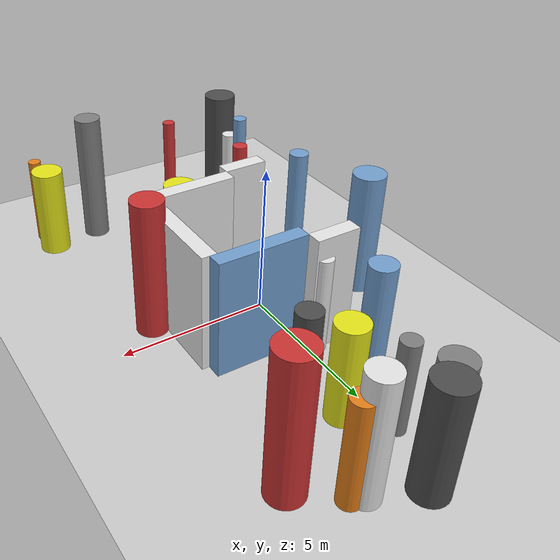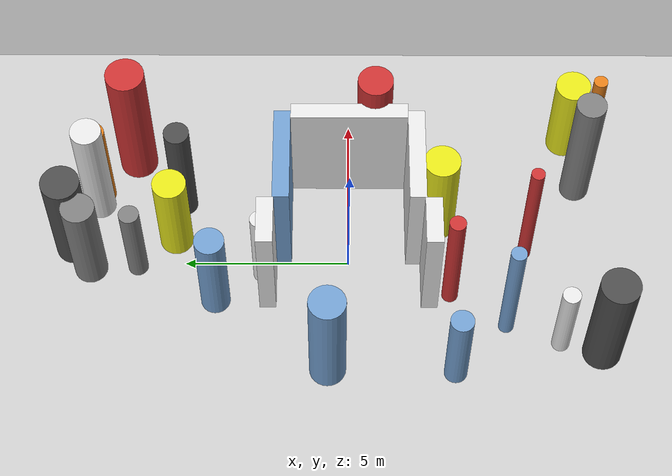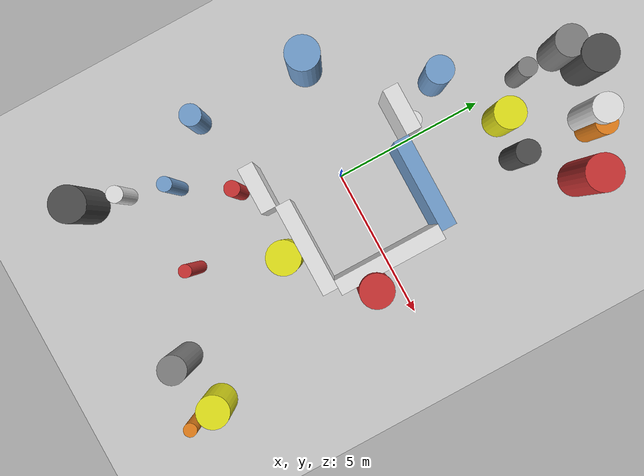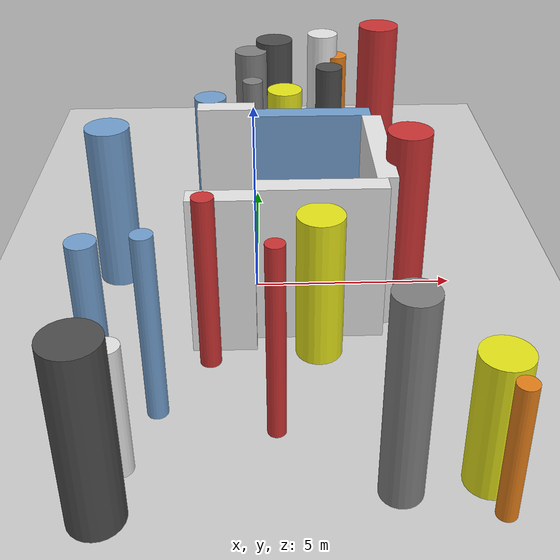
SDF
<?xml version='1.0'?>
<sdf version='1.6'>
  <world name='routeA_rl_v1__dense_recovery__rl_test__cul_de_sac_trap__000116'>
    <!-- Sun light -->
    <light name='sun' type='directional'>
      <cast_shadows>1</cast_shadows>
      <pose>0 0 10 0 0 0</pose>
      <diffuse>0.8 0.8 0.8 1</diffuse>
      <specular>0.2 0.2 0.2 1</specular>
      <attenuation>
        <range>1000</range>
        <constant>0.9</constant>
        <linear>0.01</linear>
        <quadratic>0.001</quadratic>
      </attenuation>
      <direction>-0.5 0.1 -0.9</direction>
    </light>

    <!-- Ground plane -->
    <model name='ground_plane'>
      <static>1</static>
      <link name='link'>
        <collision name='collision'>
          <geometry>
            <plane>
              <normal>0 0 1</normal>
              <size>100 100</size>
            </plane>
          </geometry>
          <surface>
            <contact>
              <collide_bitmask>65535</collide_bitmask>
              <ode/>
            </contact>
            <friction>
              <ode>
                <mu>100</mu>
                <mu2>50</mu2>
              </ode>
              <torsional><ode/></torsional>
            </friction>
            <bounce/>
          </surface>
          <max_contacts>10</max_contacts>
        </collision>
        <visual name='visual'>
          <cast_shadows>0</cast_shadows>
          <geometry>
            <plane>
              <normal>0 0 1</normal>
              <size>100 100</size>
            </plane>
          </geometry>
          <material>
            <script>
              <uri>file://media/materials/scripts/gazebo.material</uri>
              <n>Gazebo/Grey</n>
            </script>
          </material>
        </visual>
      </link>
    </model>

    <!-- Environment -->
    <magnetic_field>6e-06 2.3e-05 -4.2e-05</magnetic_field>
    <atmosphere type='adiabatic'/>
    <physics name='default_physics' default='0' type='ode'>
      <gravity>0 0 -9.8</gravity>
      <max_step_size>0.004</max_step_size>
      <real_time_factor>1</real_time_factor>
      <real_time_update_rate>250</real_time_update_rate>
    </physics>
    <scene>
      <ambient>0.4 0.4 0.4 1</ambient>
      <background>0.7 0.7 0.7 1</background>
      <shadows>1</shadows>
    </scene>
    <wind/>
    <spherical_coordinates>
      <surface_model>EARTH_WGS84</surface_model>
      <latitude_deg>0</latitude_deg>
      <longitude_deg>0</longitude_deg>
      <elevation>0</elevation>
      <heading_deg>0</heading_deg>
    </spherical_coordinates>

    <!-- ============ OBSTACLES (27) ============ -->
    <model name='trap_side_l'>
      <static>1</static>
      <link name='link'>
        <visual name='visual'>
          <geometry>
            <box>
              <size>3.0000 0.5000 4.0000</size>
            </box>
          </geometry>
          <material>
            <script>
              <n>Gazebo/White</n>
              <uri>file://media/materials/scripts/gazebo.material</uri>
            </script>
            <ambient>0.9 0.9 0.9 1</ambient>
          </material>
        </visual>
        <collision name='collision'>
          <geometry>
            <box>
              <size>3.0000 0.5000 4.0000</size>
            </box>
          </geometry>
          <max_contacts>10</max_contacts>
          <surface>
            <contact><ode/></contact>
            <bounce/>
            <friction>
              <ode><mu>1</mu><mu2>1</mu2></ode>
              <torsional><ode/></torsional>
            </friction>
          </surface>
        </collision>
      </link>
      <pose>1.5000 -2.0000 2.0000 0 0 0.0000</pose>
    </model>

    <model name='trap_side_r'>
      <static>1</static>
      <link name='link'>
        <visual name='visual'>
          <geometry>
            <box>
              <size>3.0000 0.5000 4.0000</size>
            </box>
          </geometry>
          <material>
            <script>
              <n>Gazebo/Blue</n>
              <uri>file://media/materials/scripts/gazebo.material</uri>
            </script>
            <ambient>0.447 0.624 0.812 1</ambient>
          </material>
        </visual>
        <collision name='collision'>
          <geometry>
            <box>
              <size>3.0000 0.5000 4.0000</size>
            </box>
          </geometry>
          <max_contacts>10</max_contacts>
          <surface>
            <contact><ode/></contact>
            <bounce/>
            <friction>
              <ode><mu>1</mu><mu2>1</mu2></ode>
              <torsional><ode/></torsional>
            </friction>
          </surface>
        </collision>
      </link>
      <pose>1.5000 2.0000 2.0000 0 0 0.0000</pose>
    </model>

    <model name='trap_back'>
      <static>1</static>
      <link name='link'>
        <visual name='visual'>
          <geometry>
            <box>
              <size>0.5000 3.5000 4.0000</size>
            </box>
          </geometry>
          <material>
            <script>
              <n>Gazebo/White</n>
              <uri>file://media/materials/scripts/gazebo.material</uri>
            </script>
            <ambient>0.9 0.9 0.9 1</ambient>
          </material>
        </visual>
        <collision name='collision'>
          <geometry>
            <box>
              <size>0.5000 3.5000 4.0000</size>
            </box>
          </geometry>
          <max_contacts>10</max_contacts>
          <surface>
            <contact><ode/></contact>
            <bounce/>
            <friction>
              <ode><mu>1</mu><mu2>1</mu2></ode>
              <torsional><ode/></torsional>
            </friction>
          </surface>
        </collision>
      </link>
      <pose>3.0000 0.0000 2.0000 0 0 0.0000</pose>
    </model>

    <model name='trap_funnel_l'>
      <static>1</static>
      <link name='link'>
        <visual name='visual'>
          <geometry>
            <box>
              <size>1.5000 0.5000 4.0000</size>
            </box>
          </geometry>
          <material>
            <script>
              <n>Gazebo/White</n>
              <uri>file://media/materials/scripts/gazebo.material</uri>
            </script>
            <ambient>0.9 0.9 0.9 1</ambient>
          </material>
        </visual>
        <collision name='collision'>
          <geometry>
            <box>
              <size>1.5000 0.5000 4.0000</size>
            </box>
          </geometry>
          <max_contacts>10</max_contacts>
          <surface>
            <contact><ode/></contact>
            <bounce/>
            <friction>
              <ode><mu>1</mu><mu2>1</mu2></ode>
              <torsional><ode/></torsional>
            </friction>
          </surface>
        </collision>
      </link>
      <pose>-0.7500 -2.4500 2.0000 0 0 0.0000</pose>
    </model>

    <model name='trap_funnel_r'>
      <static>1</static>
      <link name='link'>
        <visual name='visual'>
          <geometry>
            <box>
              <size>1.5000 0.5000 4.0000</size>
            </box>
          </geometry>
          <material>
            <script>
              <n>Gazebo/White</n>
              <uri>file://media/materials/scripts/gazebo.material</uri>
            </script>
            <ambient>0.9 0.9 0.9 1</ambient>
          </material>
        </visual>
        <collision name='collision'>
          <geometry>
            <box>
              <size>1.5000 0.5000 4.0000</size>
            </box>
          </geometry>
          <max_contacts>10</max_contacts>
          <surface>
            <contact><ode/></contact>
            <bounce/>
            <friction>
              <ode><mu>1</mu><mu2>1</mu2></ode>
              <torsional><ode/></torsional>
            </friction>
          </surface>
        </collision>
      </link>
      <pose>-0.7500 2.4500 2.0000 0 0 0.0000</pose>
    </model>

    <model name='trap_scatter_0'>
      <static>1</static>
      <link name='link'>
        <visual name='visual'>
          <geometry>
            <cylinder>
              <radius>0.5335</radius>
              <length>3.1294</length>
            </cylinder>
          </geometry>
          <material>
            <script>
              <n>Gazebo/Yellow</n>
              <uri>file://media/materials/scripts/gazebo.material</uri>
            </script>
            <ambient>0.9 0.9 0.1 1</ambient>
          </material>
        </visual>
        <collision name='collision'>
          <geometry>
            <cylinder>
              <radius>0.5335</radius>
              <length>3.1294</length>
            </cylinder>
          </geometry>
          <max_contacts>10</max_contacts>
          <surface>
            <contact><ode/></contact>
            <bounce/>
            <friction>
              <ode><mu>1</mu><mu2>1</mu2></ode>
              <torsional><ode/></torsional>
            </friction>
          </surface>
        </collision>
      </link>
      <pose>4.5273 -6.8936 1.5647 0 0 0.0000</pose>
    </model>

    <model name='trap_scatter_2'>
      <static>1</static>
      <link name='link'>
        <visual name='visual'>
          <geometry>
            <cylinder>
              <radius>0.2477</radius>
              <length>4.3178</length>
            </cylinder>
          </geometry>
          <material>
            <script>
              <n>Gazebo/Red</n>
              <uri>file://media/materials/scripts/gazebo.material</uri>
            </script>
            <ambient>0.8 0.2 0.2 1</ambient>
          </material>
        </visual>
        <collision name='collision'>
          <geometry>
            <cylinder>
              <radius>0.2477</radius>
              <length>4.3178</length>
            </cylinder>
          </geometry>
          <max_contacts>10</max_contacts>
          <surface>
            <contact><ode/></contact>
            <bounce/>
            <friction>
              <ode><mu>1</mu><mu2>1</mu2></ode>
              <torsional><ode/></torsional>
            </friction>
          </surface>
        </collision>
      </link>
      <pose>-1.0656 -3.0863 2.1589 0 0 0.0000</pose>
    </model>

    <model name='trap_scatter_3'>
      <static>1</static>
      <link name='link'>
        <visual name='visual'>
          <geometry>
            <cylinder>
              <radius>0.2165</radius>
              <length>3.1590</length>
            </cylinder>
          </geometry>
          <material>
            <script>
              <n>Gazebo/Orange</n>
              <uri>file://media/materials/scripts/gazebo.material</uri>
            </script>
            <ambient>0.9 0.5 0.1 1</ambient>
          </material>
        </visual>
        <collision name='collision'>
          <geometry>
            <cylinder>
              <radius>0.2165</radius>
              <length>3.1590</length>
            </cylinder>
          </geometry>
          <max_contacts>10</max_contacts>
          <surface>
            <contact><ode/></contact>
            <bounce/>
            <friction>
              <ode><mu>1</mu><mu2>1</mu2></ode>
              <torsional><ode/></torsional>
            </friction>
          </surface>
        </collision>
      </link>
      <pose>4.6706 -7.7428 1.5795 0 0 0.0000</pose>
    </model>

    <model name='trap_scatter_4'>
      <static>1</static>
      <link name='link'>
        <visual name='visual'>
          <geometry>
            <cylinder>
              <radius>0.2761</radius>
              <length>3.3133</length>
            </cylinder>
          </geometry>
          <material>
            <script>
              <n>Gazebo/White</n>
              <uri>file://media/materials/scripts/gazebo.material</uri>
            </script>
            <ambient>0.9 0.9 0.9 1</ambient>
          </material>
        </visual>
        <collision name='collision'>
          <geometry>
            <cylinder>
              <radius>0.2761</radius>
              <length>3.3133</length>
            </cylinder>
          </geometry>
          <max_contacts>10</max_contacts>
          <surface>
            <contact><ode/></contact>
            <bounce/>
            <friction>
              <ode><mu>1</mu><mu2>1</mu2></ode>
              <torsional><ode/></torsional>
            </friction>
          </surface>
        </collision>
      </link>
      <pose>-0.3458 2.6407 1.6566 0 0 0.0000</pose>
    </model>

    <model name='trap_scatter_5'>
      <static>1</static>
      <link name='link'>
        <visual name='visual'>
          <geometry>
            <cylinder>
              <radius>0.5825</radius>
              <length>4.1736</length>
            </cylinder>
          </geometry>
          <material>
            <script>
              <n>Gazebo/DarkGrey</n>
              <uri>file://media/materials/scripts/gazebo.material</uri>
            </script>
            <ambient>0.3 0.3 0.3 1</ambient>
          </material>
        </visual>
        <collision name='collision'>
          <geometry>
            <cylinder>
              <radius>0.5825</radius>
              <length>4.1736</length>
            </cylinder>
          </geometry>
          <max_contacts>10</max_contacts>
          <surface>
            <contact><ode/></contact>
            <bounce/>
            <friction>
              <ode><mu>1</mu><mu2>1</mu2></ode>
              <torsional><ode/></torsional>
            </friction>
          </surface>
        </collision>
      </link>
      <pose>-2.9945 -7.5807 2.0868 0 0 0.0000</pose>
    </model>

    <model name='trap_scatter_6'>
      <static>1</static>
      <link name='link'>
        <visual name='visual'>
          <geometry>
            <cylinder>
              <radius>0.5874</radius>
              <length>4.7923</length>
            </cylinder>
          </geometry>
          <material>
            <script>
              <n>Gazebo/Red</n>
              <uri>file://media/materials/scripts/gazebo.material</uri>
            </script>
            <ambient>0.8 0.2 0.2 1</ambient>
          </material>
        </visual>
        <collision name='collision'>
          <geometry>
            <cylinder>
              <radius>0.5874</radius>
              <length>4.7923</length>
            </cylinder>
          </geometry>
          <max_contacts>10</max_contacts>
          <surface>
            <contact><ode/></contact>
            <bounce/>
            <friction>
              <ode><mu>1</mu><mu2>1</mu2></ode>
              <torsional><ode/></torsional>
            </friction>
          </surface>
        </collision>
      </link>
      <pose>3.7275 6.6655 2.3962 0 0 0.0000</pose>
    </model>

    <model name='trap_scatter_7'>
      <static>1</static>
      <link name='link'>
        <visual name='visual'>
          <geometry>
            <cylinder>
              <radius>0.5099</radius>
              <length>3.3056</length>
            </cylinder>
          </geometry>
          <material>
            <script>
              <n>Gazebo/Yellow</n>
              <uri>file://media/materials/scripts/gazebo.material</uri>
            </script>
            <ambient>0.9 0.9 0.1 1</ambient>
          </material>
        </visual>
        <collision name='collision'>
          <geometry>
            <cylinder>
              <radius>0.5099</radius>
              <length>3.3056</length>
            </cylinder>
          </geometry>
          <max_contacts>10</max_contacts>
          <surface>
            <contact><ode/></contact>
            <bounce/>
            <friction>
              <ode><mu>1</mu><mu2>1</mu2></ode>
              <torsional><ode/></torsional>
            </friction>
          </surface>
        </collision>
      </link>
      <pose>0.8633 5.3260 1.6528 0 0 0.0000</pose>
    </model>

    <model name='trap_scatter_8'>
      <static>1</static>
      <link name='link'>
        <visual name='visual'>
          <geometry>
            <cylinder>
              <radius>0.3826</radius>
              <length>4.0664</length>
            </cylinder>
          </geometry>
          <material>
            <script>
              <n>Gazebo/DarkGrey</n>
              <uri>file://media/materials/scripts/gazebo.material</uri>
            </script>
            <ambient>0.3 0.3 0.3 1</ambient>
          </material>
        </visual>
        <collision name='collision'>
          <geometry>
            <cylinder>
              <radius>0.3826</radius>
              <length>4.0664</length>
            </cylinder>
          </geometry>
          <max_contacts>10</max_contacts>
          <surface>
            <contact><ode/></contact>
            <bounce/>
            <friction>
              <ode><mu>1</mu><mu2>1</mu2></ode>
              <torsional><ode/></torsional>
            </friction>
          </surface>
        </collision>
      </link>
      <pose>2.1463 5.1156 2.0332 0 0 0.0000</pose>
    </model>

    <model name='trap_scatter_9'>
      <static>1</static>
      <link name='link'>
        <visual name='visual'>
          <geometry>
            <cylinder>
              <radius>0.5326</radius>
              <length>4.7010</length>
            </cylinder>
          </geometry>
          <material>
            <script>
              <n>Gazebo/Red</n>
              <uri>file://media/materials/scripts/gazebo.material</uri>
            </script>
            <ambient>0.8 0.2 0.2 1</ambient>
          </material>
        </visual>
        <collision name='collision'>
          <geometry>
            <cylinder>
              <radius>0.5326</radius>
              <length>4.7010</length>
            </cylinder>
          </geometry>
          <max_contacts>10</max_contacts>
          <surface>
            <contact><ode/></contact>
            <bounce/>
            <friction>
              <ode><mu>1</mu><mu2>1</mu2></ode>
              <torsional><ode/></torsional>
            </friction>
          </surface>
        </collision>
      </link>
      <pose>3.5983 -0.7838 2.3505 0 0 0.0000</pose>
    </model>

    <model name='trap_scatter_10'>
      <static>1</static>
      <link name='link'>
        <visual name='visual'>
          <geometry>
            <cylinder>
              <radius>0.4669</radius>
              <length>4.1926</length>
            </cylinder>
          </geometry>
          <material>
            <script>
              <n>Gazebo/White</n>
              <uri>file://media/materials/scripts/gazebo.material</uri>
            </script>
            <ambient>0.9 0.9 0.9 1</ambient>
          </material>
        </visual>
        <collision name='collision'>
          <geometry>
            <cylinder>
              <radius>0.4669</radius>
              <length>4.1926</length>
            </cylinder>
          </geometry>
          <max_contacts>10</max_contacts>
          <surface>
            <contact><ode/></contact>
            <bounce/>
            <friction>
              <ode><mu>1</mu><mu2>1</mu2></ode>
              <torsional><ode/></torsional>
            </friction>
          </surface>
        </collision>
      </link>
      <pose>2.1137 7.7755 2.0963 0 0 0.0000</pose>
    </model>

    <model name='trap_scatter_12'>
      <static>1</static>
      <link name='link'>
        <visual name='visual'>
          <geometry>
            <cylinder>
              <radius>0.3477</radius>
              <length>3.3452</length>
            </cylinder>
          </geometry>
          <material>
            <script>
              <n>Gazebo/Blue</n>
              <uri>file://media/materials/scripts/gazebo.material</uri>
            </script>
            <ambient>0.447 0.624 0.812 1</ambient>
          </material>
        </visual>
        <collision name='collision'>
          <geometry>
            <cylinder>
              <radius>0.3477</radius>
              <length>3.3452</length>
            </cylinder>
          </geometry>
          <max_contacts>10</max_contacts>
          <surface>
            <contact><ode/></contact>
            <bounce/>
            <friction>
              <ode><mu>1</mu><mu2>1</mu2></ode>
              <torsional><ode/></torsional>
            </friction>
          </surface>
        </collision>
      </link>
      <pose>-3.6778 -3.1838 1.6726 0 0 0.0000</pose>
    </model>

    <model name='trap_scatter_13'>
      <static>1</static>
      <link name='link'>
        <visual name='visual'>
          <geometry>
            <cylinder>
              <radius>0.4452</radius>
              <length>3.6160</length>
            </cylinder>
          </geometry>
          <material>
            <script>
              <n>Gazebo/Blue</n>
              <uri>file://media/materials/scripts/gazebo.material</uri>
            </script>
            <ambient>0.447 0.624 0.812 1</ambient>
          </material>
        </visual>
        <collision name='collision'>
          <geometry>
            <cylinder>
              <radius>0.4452</radius>
              <length>3.6160</length>
            </cylinder>
          </geometry>
          <max_contacts>10</max_contacts>
          <surface>
            <contact><ode/></contact>
            <bounce/>
            <friction>
              <ode><mu>1</mu><mu2>1</mu2></ode>
              <torsional><ode/></torsional>
            </friction>
          </surface>
        </collision>
      </link>
      <pose>-1.2604 4.0409 1.8080 0 0 0.0000</pose>
    </model>

    <model name='trap_scatter_14'>
      <static>1</static>
      <link name='link'>
        <visual name='visual'>
          <geometry>
            <cylinder>
              <radius>0.2036</radius>
              <length>4.6006</length>
            </cylinder>
          </geometry>
          <material>
            <script>
              <n>Gazebo/Red</n>
              <uri>file://media/materials/scripts/gazebo.material</uri>
            </script>
            <ambient>0.8 0.2 0.2 1</ambient>
          </material>
        </visual>
        <collision name='collision'>
          <geometry>
            <cylinder>
              <radius>0.2036</radius>
              <length>4.6006</length>
            </cylinder>
          </geometry>
          <max_contacts>10</max_contacts>
          <surface>
            <contact><ode/></contact>
            <bounce/>
            <friction>
              <ode><mu>1</mu><mu2>1</mu2></ode>
              <torsional><ode/></torsional>
            </friction>
          </surface>
        </collision>
      </link>
      <pose>0.4126 -5.4217 2.3003 0 0 0.0000</pose>
    </model>

    <model name='trap_scatter_15'>
      <static>1</static>
      <link name='link'>
        <visual name='visual'>
          <geometry>
            <cylinder>
              <radius>0.4502</radius>
              <length>4.6506</length>
            </cylinder>
          </geometry>
          <material>
            <script>
              <n>Gazebo/Grey</n>
              <uri>file://media/materials/scripts/gazebo.material</uri>
            </script>
            <ambient>0.5 0.5 0.5 1</ambient>
          </material>
        </visual>
        <collision name='collision'>
          <geometry>
            <cylinder>
              <radius>0.4502</radius>
              <length>4.6506</length>
            </cylinder>
          </geometry>
          <max_contacts>10</max_contacts>
          <surface>
            <contact><ode/></contact>
            <bounce/>
            <friction>
              <ode><mu>1</mu><mu2>1</mu2></ode>
              <torsional><ode/></torsional>
            </friction>
          </surface>
        </collision>
      </link>
      <pose>2.7651 -7.1305 2.3253 0 0 0.0000</pose>
    </model>

    <model name='trap_scatter_16'>
      <static>1</static>
      <link name='link'>
        <visual name='visual'>
          <geometry>
            <cylinder>
              <radius>0.2330</radius>
              <length>4.4414</length>
            </cylinder>
          </geometry>
          <material>
            <script>
              <n>Gazebo/Blue</n>
              <uri>file://media/materials/scripts/gazebo.material</uri>
            </script>
            <ambient>0.447 0.624 0.812 1</ambient>
          </material>
        </visual>
        <collision name='collision'>
          <geometry>
            <cylinder>
              <radius>0.2330</radius>
              <length>4.4414</length>
            </cylinder>
          </geometry>
          <max_contacts>10</max_contacts>
          <surface>
            <contact><ode/></contact>
            <bounce/>
            <friction>
              <ode><mu>1</mu><mu2>1</mu2></ode>
              <torsional><ode/></torsional>
            </friction>
          </surface>
        </collision>
      </link>
      <pose>-2.1220 -4.7551 2.2207 0 0 0.0000</pose>
    </model>

    <model name='trap_scatter_17'>
      <static>1</static>
      <link name='link'>
        <visual name='visual'>
          <geometry>
            <cylinder>
              <radius>0.5069</radius>
              <length>3.5967</length>
            </cylinder>
          </geometry>
          <material>
            <script>
              <n>Gazebo/Grey</n>
              <uri>file://media/materials/scripts/gazebo.material</uri>
            </script>
            <ambient>0.5 0.5 0.5 1</ambient>
          </material>
        </visual>
        <collision name='collision'>
          <geometry>
            <cylinder>
              <radius>0.5069</radius>
              <length>3.5967</length>
            </cylinder>
          </geometry>
          <max_contacts>10</max_contacts>
          <surface>
            <contact><ode/></contact>
            <bounce/>
            <friction>
              <ode><mu>1</mu><mu2>1</mu2></ode>
              <torsional><ode/></torsional>
            </friction>
          </surface>
        </collision>
      </link>
      <pose>-0.1511 7.9146 1.7983 0 0 0.0000</pose>
    </model>

    <model name='trap_scatter_18'>
      <static>1</static>
      <link name='link'>
        <visual name='visual'>
          <geometry>
            <cylinder>
              <radius>0.3067</radius>
              <length>3.1430</length>
            </cylinder>
          </geometry>
          <material>
            <script>
              <n>Gazebo/Grey</n>
              <uri>file://media/materials/scripts/gazebo.material</uri>
            </script>
            <ambient>0.5 0.5 0.5 1</ambient>
          </material>
        </visual>
        <collision name='collision'>
          <geometry>
            <cylinder>
              <radius>0.3067</radius>
              <length>3.1430</length>
            </cylinder>
          </geometry>
          <max_contacts>10</max_contacts>
          <surface>
            <contact><ode/></contact>
            <bounce/>
            <friction>
              <ode><mu>1</mu><mu2>1</mu2></ode>
              <torsional><ode/></torsional>
            </friction>
          </surface>
        </collision>
      </link>
      <pose>-0.0967 6.4693 1.5715 0 0 0.0000</pose>
    </model>

    <model name='trap_scatter_19'>
      <static>1</static>
      <link name='link'>
        <visual name='visual'>
          <geometry>
            <cylinder>
              <radius>0.5484</radius>
              <length>4.2723</length>
            </cylinder>
          </geometry>
          <material>
            <script>
              <n>Gazebo/Blue</n>
              <uri>file://media/materials/scripts/gazebo.material</uri>
            </script>
            <ambient>0.447 0.624 0.812 1</ambient>
          </material>
        </visual>
        <collision name='collision'>
          <geometry>
            <cylinder>
              <radius>0.5484</radius>
              <length>4.2723</length>
            </cylinder>
          </geometry>
          <max_contacts>10</max_contacts>
          <surface>
            <contact><ode/></contact>
            <bounce/>
            <friction>
              <ode><mu>1</mu><mu2>1</mu2></ode>
              <torsional><ode/></torsional>
            </friction>
          </surface>
        </collision>
      </link>
      <pose>-3.5845 0.6281 2.1362 0 0 0.0000</pose>
    </model>

    <model name='trap_scatter_20'>
      <static>1</static>
      <link name='link'>
        <visual name='visual'>
          <geometry>
            <cylinder>
              <radius>0.2715</radius>
              <length>3.0657</length>
            </cylinder>
          </geometry>
          <material>
            <script>
              <n>Gazebo/White</n>
              <uri>file://media/materials/scripts/gazebo.material</uri>
            </script>
            <ambient>0.9 0.9 0.9 1</ambient>
          </material>
        </visual>
        <collision name='collision'>
          <geometry>
            <cylinder>
              <radius>0.2715</radius>
              <length>3.0657</length>
            </cylinder>
          </geometry>
          <max_contacts>10</max_contacts>
          <surface>
            <contact><ode/></contact>
            <bounce/>
            <friction>
              <ode><mu>1</mu><mu2>1</mu2></ode>
              <torsional><ode/></torsional>
            </friction>
          </surface>
        </collision>
      </link>
      <pose>-2.6995 -6.3614 1.5329 0 0 0.0000</pose>
    </model>

    <model name='trap_scatter_21'>
      <static>1</static>
      <link name='link'>
        <visual name='visual'>
          <geometry>
            <cylinder>
              <radius>0.3562</radius>
              <length>3.5098</length>
            </cylinder>
          </geometry>
          <material>
            <script>
              <n>Gazebo/Orange</n>
              <uri>file://media/materials/scripts/gazebo.material</uri>
            </script>
            <ambient>0.9 0.5 0.1 1</ambient>
          </material>
        </visual>
        <collision name='collision'>
          <geometry>
            <cylinder>
              <radius>0.3562</radius>
              <length>3.5098</length>
            </cylinder>
          </geometry>
          <max_contacts>10</max_contacts>
          <surface>
            <contact><ode/></contact>
            <bounce/>
            <friction>
              <ode><mu>1</mu><mu2>1</mu2></ode>
              <torsional><ode/></torsional>
            </friction>
          </surface>
        </collision>
      </link>
      <pose>2.5209 7.6869 1.7549 0 0 0.0000</pose>
    </model>

    <model name='trap_scatter_22'>
      <static>1</static>
      <link name='link'>
        <visual name='visual'>
          <geometry>
            <cylinder>
              <radius>0.5826</radius>
              <length>3.7760</length>
            </cylinder>
          </geometry>
          <material>
            <script>
              <n>Gazebo/DarkGrey</n>
              <uri>file://media/materials/scripts/gazebo.material</uri>
            </script>
            <ambient>0.3 0.3 0.3 1</ambient>
          </material>
        </visual>
        <collision name='collision'>
          <geometry>
            <cylinder>
              <radius>0.5826</radius>
              <length>3.7760</length>
            </cylinder>
          </geometry>
          <max_contacts>10</max_contacts>
          <surface>
            <contact><ode/></contact>
            <bounce/>
            <friction>
              <ode><mu>1</mu><mu2>1</mu2></ode>
              <torsional><ode/></torsional>
            </friction>
          </surface>
        </collision>
      </link>
      <pose>0.6013 8.4613 1.8880 0 0 0.0000</pose>
    </model>

    <model name='trap_scatter_24'>
      <static>1</static>
      <link name='link'>
        <visual name='visual'>
          <geometry>
            <cylinder>
              <radius>0.5466</radius>
              <length>3.6623</length>
            </cylinder>
          </geometry>
          <material>
            <script>
              <n>Gazebo/Yellow</n>
              <uri>file://media/materials/scripts/gazebo.material</uri>
            </script>
            <ambient>0.9 0.9 0.1 1</ambient>
          </material>
        </visual>
        <collision name='collision'>
          <geometry>
            <cylinder>
              <radius>0.5466</radius>
              <length>3.6623</length>
            </cylinder>
          </geometry>
          <max_contacts>10</max_contacts>
          <surface>
            <contact><ode/></contact>
            <bounce/>
            <friction>
              <ode><mu>1</mu><mu2>1</mu2></ode>
              <torsional><ode/></torsional>
            </friction>
          </surface>
        </collision>
      </link>
      <pose>1.4442 -2.7601 1.8312 0 0 0.0000</pose>
    </model>

    <!-- GUI camera -->
    <gui fullscreen='0'>
      <camera name='user_camera'>
        <pose>-15 0 18 0 0.85 0.15</pose>
        <view_controller>orbit</view_controller>
        <projection_type>perspective</projection_type>
      </camera>
    </gui>
  </world>
</sdf>
